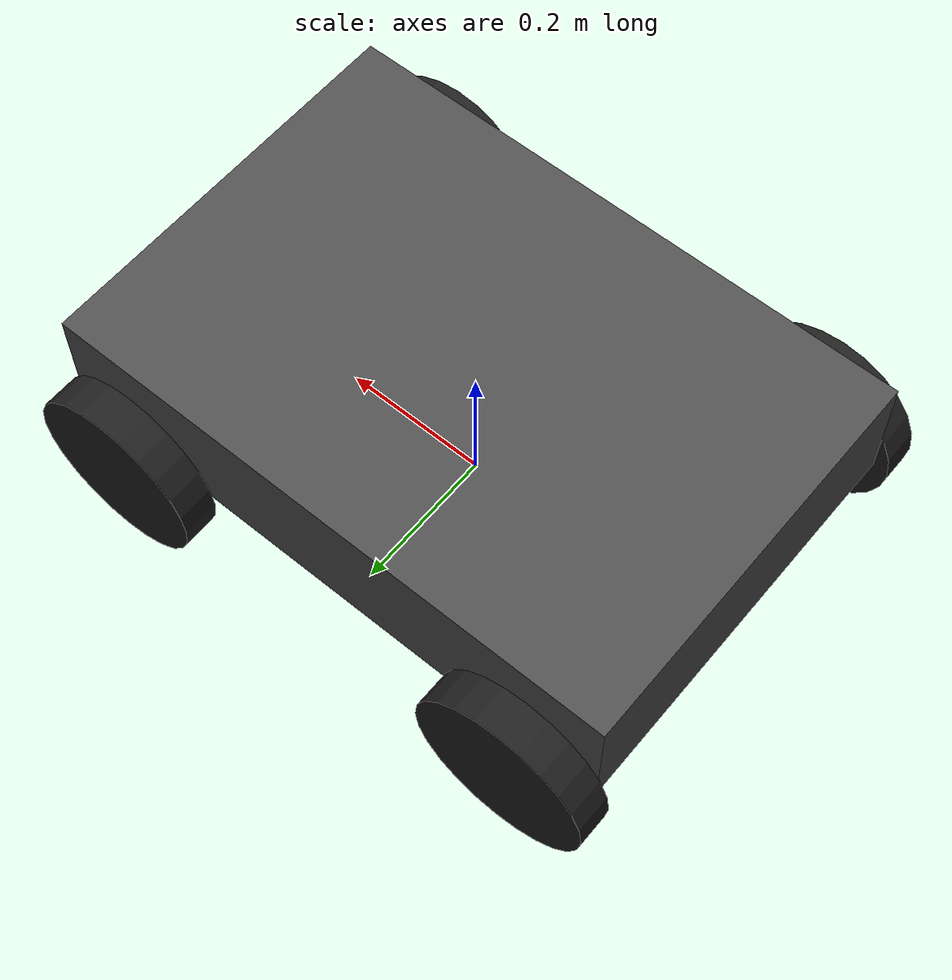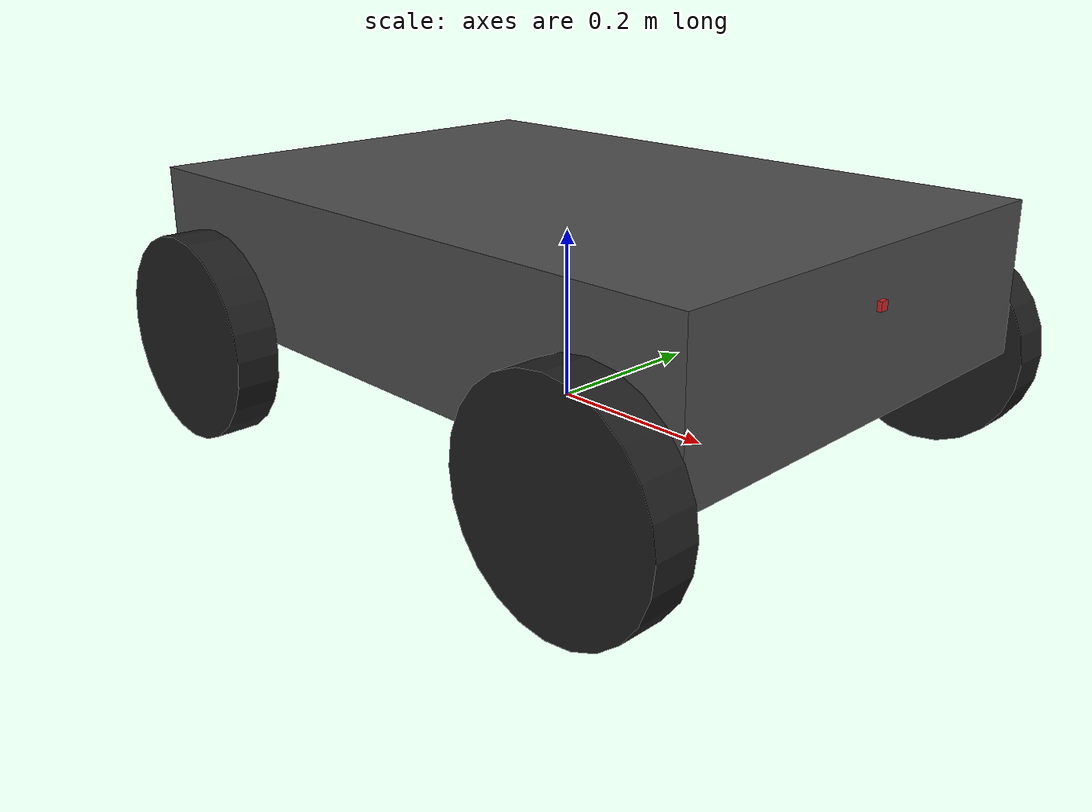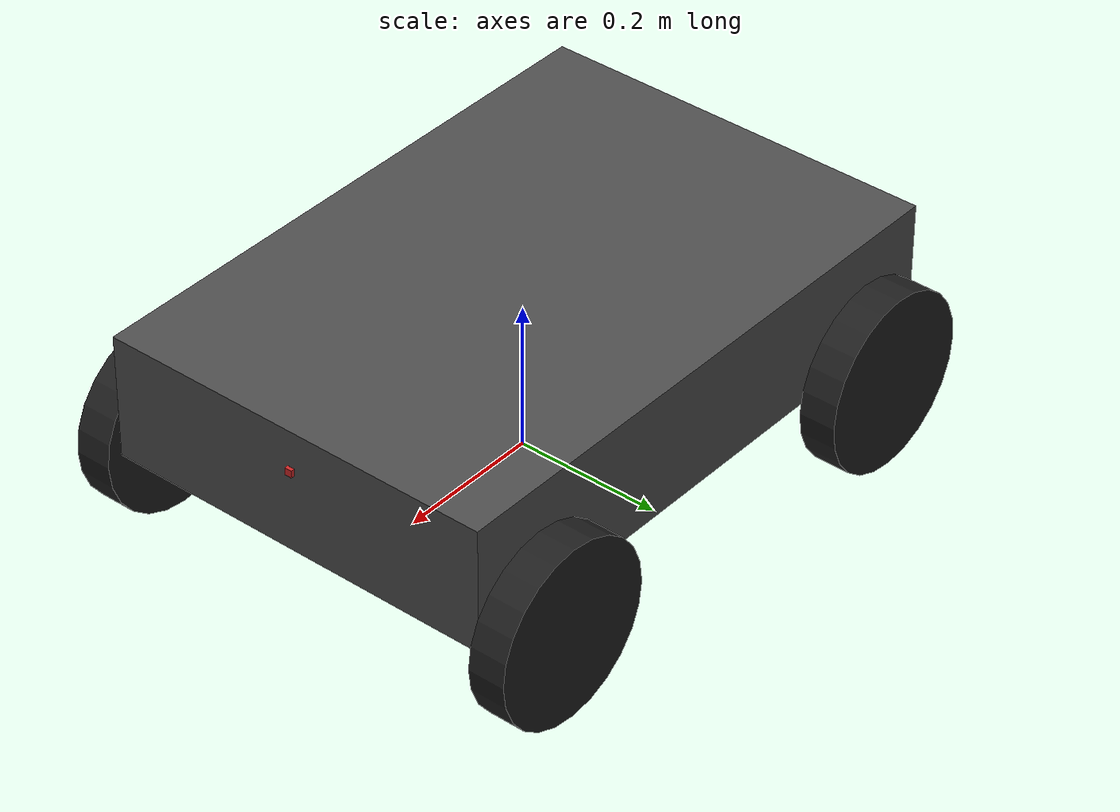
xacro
<?xml version="1.0"?>
<robot xmlns:xacro="http://www.ros.org/wiki/xacro" name="my_robot">

  <link name="base_link">
  <inertial>
    <origin xyz="0 0 0.125" />
    <mass value="50" />
    <inertia  ixx="1.1" ixy="1.0"  ixz="0.0"  iyy="0.1"  iyz="0.0"  izz="0.1" />
  </inertial>
  <visual>
    <origin xyz="0 0 0.17"/>
    <geometry>
      <box size="0.8 0.545 0.17" />
    </geometry>
  </visual>
  <collision>
    <origin xyz="0 0 0.17"/>
    <geometry>
      <box size="0.8 0.545 0.17" />
    </geometry>
  </collision>
  </link>

  <gazebo reference="base_link">
    <material>Gazebo/DarkGrey</material>
  </gazebo>

  <link name="right_wheel">
  <inertial>
    <origin rpy="1.5707963267948966 0 0" xyz="0 0 0" />
    <mass value="1.1" />
    <inertia  ixx="1.01" ixy="0.0"  ixz="0.0"  iyy="1.01"  iyz="0.0"  izz="1.01" />
  </inertial>
  <visual>
    <origin rpy="1.5707963267948966 0 0" xyz="0 0 0"/>
    <geometry>
      <cylinder length="0.05" radius="0.12"/>
    </geometry>
  </visual>
  <collision>
    <origin rpy="1.5707963267948966 0 0" xyz="0 0 0"/>
    <geometry>
      <cylinder length="0.05" radius="0.12"/>
    </geometry>
  </collision>
  </link>

  <joint name="base_link_right_wheel" type="continuous">
    <parent link="base_link"/>
    <child link="right_wheel"/>
    <axis xyz="0 1 0"/>
    <origin xyz="0.3 -0.3 0.075"/>
  </joint>

  <transmission name="T_base_link_right_wheel">
    <type>transmission_interface/SimpleTransmission</type>
    <actuator name="motor_1">
      <mechanicalReduction>1</mechanicalReduction>
      <hardwareInterface>hardware_interface/VelocityJointInterface</hardwareInterface>
    </actuator>
    <joint name="base_link_right_wheel">
      <hardwareInterface>hardware_interface/VelocityJointInterface</hardwareInterface>
    </joint>
  </transmission>

  <link name="left_wheel">
  <inertial>
    <origin rpy="1.5707963267948966 0 0" xyz="0 0 0" />
    <mass value="1.1" />
    <inertia  ixx="1.01" ixy="0.0"  ixz="0.0"  iyy="1.01"  iyz="0.0"  izz="1.01" />
  </inertial>
  <visual>
    <origin rpy="1.5707963267948966 0 0" xyz="0 0 0"/>
    <geometry>
      <cylinder length="0.05" radius="0.12"/>
    </geometry>
  </visual>
  <collision>
    <origin rpy="1.5707963267948966 0 0" xyz="0 0 0"/>
    <geometry>
      <cylinder length="0.05" radius="0.12"/>
    </geometry>
  </collision>
  </link>

  <gazebo reference="left_wheel">
    <material>Gazebo/Black</material>
  </gazebo>

  <joint name="base_link_left_wheel" type="continuous">
    <parent link="base_link"/>
    <child link="left_wheel"/>
    <axis xyz="0 1 0"/>
    <origin xyz="0.3 0.3 0.075"/>
  </joint>

  <transmission name="T_base_link_left_wheel">
    <type>transmission_interface/SimpleTransmission</type>
    <actuator name="motor_2">
      <mechanicalReduction>1</mechanicalReduction>
      <hardwareInterface>hardware_interface/VelocityJointInterface</hardwareInterface>
    </actuator>
    <joint name="base_link_left_wheel">
      <hardwareInterface>hardware_interface/VelocityJointInterface</hardwareInterface>
    </joint>
  </transmission>

  <link name="right_back_wheel">
  <inertial>
    <origin rpy="1.5707963267948966 0 0" xyz="0 0 0" />
    <mass value="1.1" />
    <inertia  ixx="1.01" ixy="0.0"  ixz="0.0"  iyy="1.01"  iyz="0.0"  izz="1.01" />
  </inertial>
  <visual>
    <origin rpy="1.5707963267948966 0 0" xyz="0 0 0"/>
    <geometry>
      <cylinder length="0.05" radius="0.12"/>
    </geometry>
  </visual>
  <collision>
    <origin rpy="1.5707963267948966 0 0" xyz="0 0 0"/>
    <geometry>
      <cylinder length="0.05" radius="0.12"/>
    </geometry>
  </collision>
  </link>

<link name="camera_link">
    <collision>
      <origin xyz="0 0 0" rpy="0 0 0"/>
      <geometry>
    <box size="0.01 0.01 0.01"/>
      </geometry>
    </collision>

    <visual>
      <origin xyz="0 0 0" rpy="0 0 0"/>
      <geometry>
    <box size="0.01 0.01 0.01"/>
      </geometry>
      <material name="red"/>
    </visual>

    <inertial>
      <mass value="1e-5" />
      <origin xyz="0 0 0" rpy="0 0 0"/>
      <inertia ixx="1e-6" ixy="0" ixz="0" iyy="1e-6" iyz="0" izz="1e-6" />
    </inertial>
  </link>

  <joint name="camera_joint" type="fixed">
    <axis xyz="0 1 0" />
    <origin xyz="0.4 0.0 0.2" rpy="0 0 0"/>
    <parent link="base_link"/>
    <child link="camera_link"/>
  </joint>

  <joint name="base_link_right_back_wheel" type="continuous">
    <parent link="base_link"/>
    <child link="right_back_wheel"/>
    <axis xyz="0 1 0"/>
    <origin xyz="-0.3 -0.3 0.075"/>
  </joint>

  <transmission name="T_base_link_right_back_wheel">
    <type>transmission_interface/SimpleTransmission</type>
    <actuator name="motor_3">
      <mechanicalReduction>1</mechanicalReduction>
      <hardwareInterface>hardware_interface/VelocityJointInterface</hardwareInterface>
    </actuator>
    <joint name="base_link_right_back_wheel">
      <hardwareInterface>hardware_interface/VelocityJointInterface</hardwareInterface>
    </joint>
  </transmission>

  <link name="left_back_wheel">
  <inertial>
    <origin rpy="1.5707963267948966 0 0" xyz="0 0 0" />
    <mass value="1.1" />
    <inertia  ixx="1.01" ixy="0.0"  ixz="0.0"  iyy="1.01"  iyz="0.0"  izz="1.01" />
  </inertial>
  <visual>
    <origin rpy="1.5707963267948966 0 0" xyz="0 0 0"/>
    <geometry>
      <cylinder length="0.05" radius="0.12"/>
    </geometry>
  </visual>
  <collision>
    <origin rpy="1.5707963267948966 0 0" xyz="0 0 0"/>
    <geometry>
      <cylinder length="0.05" radius="0.12"/>
    </geometry>
  </collision>
  </link>

  <joint name="base_link_left_back_wheel" type="continuous">
    <parent link="base_link"/>
    <child link="left_back_wheel"/>
    <axis xyz="0 1 0"/>
    <origin xyz="-0.3 0.3 0.075"/>
  </joint>

  <transmission name="T_base_link_left_back_wheel">
    <type>transmission_interface/SimpleTransmission</type>
    <actuator name="motor_4">
      <mechanicalReduction>1</mechanicalReduction>
      <hardwareInterface>hardware_interface/VelocityJointInterface</hardwareInterface>
    </actuator>
    <joint name="base_link_left_back_wheel">
      <hardwareInterface>hardware_interface/VelocityJointInterface</hardwareInterface>
    </joint>
  </transmission>
<!-- gazebo properties -->
<gazebo reference="right_wheel">
    <material>Gazebo/Black</material>
<mu1>0.5</mu1>
    <mu2>0.5</mu2>
  </gazebo>

<gazebo reference="left_back_wheel">
    <material>Gazebo/Black</material>
<mu1>0.8</mu1>
    <mu2>0.8</mu2>
  </gazebo>
<gazebo reference="left_wheel">
    <material>Gazebo/Black</material>
<mu1>0.5</mu1>
    <mu2>0.5</mu2>
  </gazebo>

<gazebo reference="right_back_wheel">
    <material>Gazebo/Black</material>
    <mu1>0.8</mu1>
    <mu2>0.8</mu2>
  </gazebo>

<gazebo>
    <plugin name="skid_steer_drive_controller" filename="libgazebo_ros_skid_steer_drive.so">
        <alwaysOn>true</alwaysOn>
        <updateRate>100.0</updateRate>
        <leftFrontJoint>base_link_left_wheel</leftFrontJoint>
        <rightFrontJoint>base_link_right_wheel</rightFrontJoint>
        <leftRearJoint>base_link_left_back_wheel</leftRearJoint>
        <rightRearJoint>base_link_right_back_wheel</rightRearJoint>
        <wheelSeparation>0.545</wheelSeparation>
        <wheelDiameter>0.24</wheelDiameter>
        <torque>30</torque>
        <commandTopic>cmd_vel</commandTopic>
        <robotBaseFrame>base_link</robotBaseFrame>
        <broadcastTF>1</broadcastTF>
    </plugin>
</gazebo>

<!-- front camera -->
  <gazebo reference="camera_link">
    <sensor type="camera" name="camera">
      <update_rate>30.0</update_rate>
      <camera name="head">
        <horizontal_fov>2.2</horizontal_fov>
        <image>
          <width>640</width>
          <height>480</height>
          <format>R8G8B8</format>
        </image>
        <clip>
          <near>0.02</near>
          <far>300</far>
        </clip>
        <noise>
          <type>gaussian</type>
          <!-- Noise is sampled independently per pixel on each frame.
               That pixel's noise value is added to each of its color
               channels, which at that point lie in the range [0,1]. -->
          <mean>0.0</mean>
          <stddev>0.007</stddev>
        </noise>
      </camera>
      <plugin name="camera_controller" filename="libgazebo_ros_camera.so">
        <alwaysOn>true</alwaysOn>
        <updateRate>0.0</updateRate>
        <cameraName>/camera</cameraName>
        <imageTopicName>image_raw</imageTopicName>
        <cameraInfoTopicName>camera_info</cameraInfoTopicName>
        <frameName>camera_link1</frameName>
        <hackBaseline>0.07</hackBaseline>
        <distortionK1>0.0</distortionK1>
        <distortionK2>0.0</distortionK2>
        <distortionK3>0.0</distortionK3>
        <distortionT1>0.0</distortionT1>
        <distortionT2>0.0</distortionT2>
      </plugin>
    </sensor>
  </gazebo>

  <xacro:property name="camera_link" value="0.05" /> <!-- Size of square 'camera' box -->

</robot>
